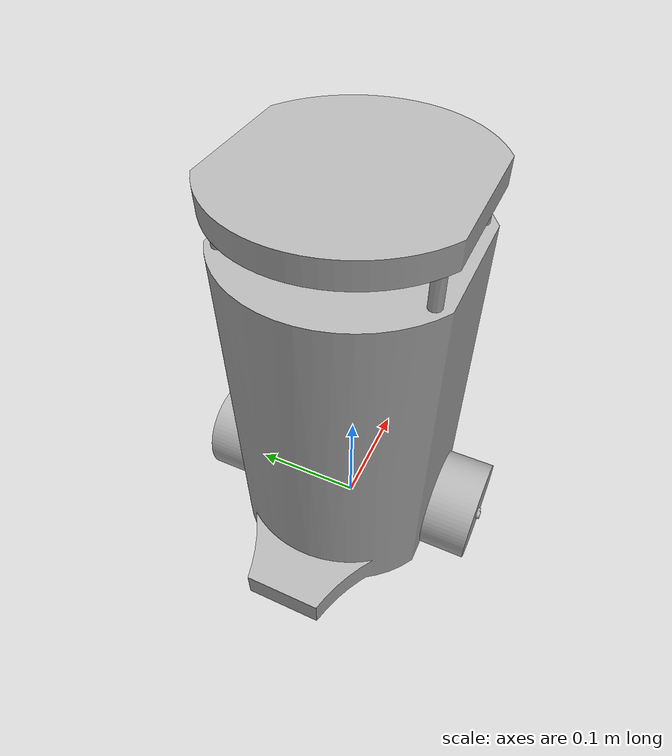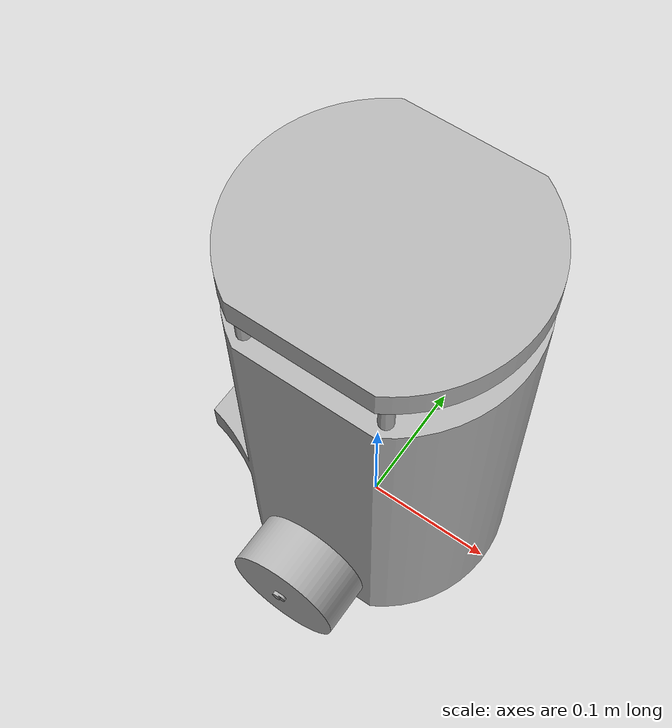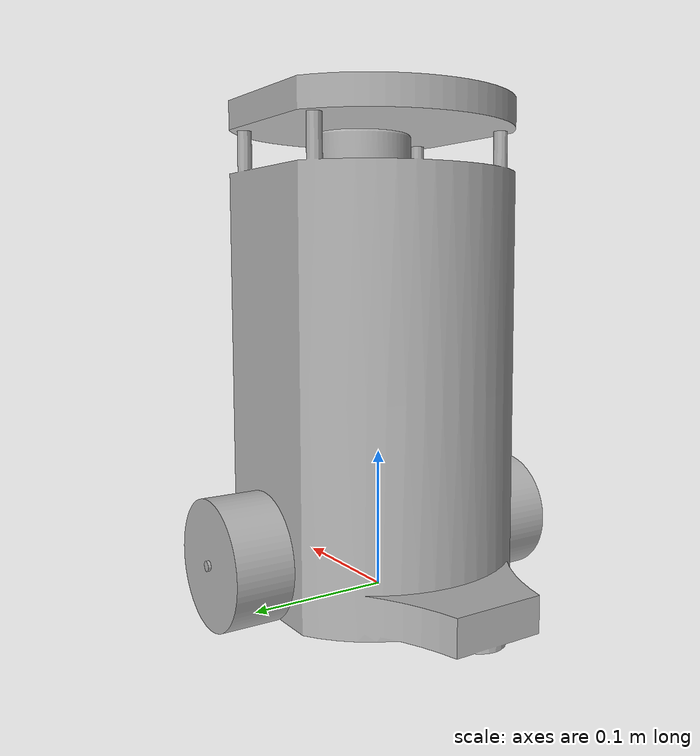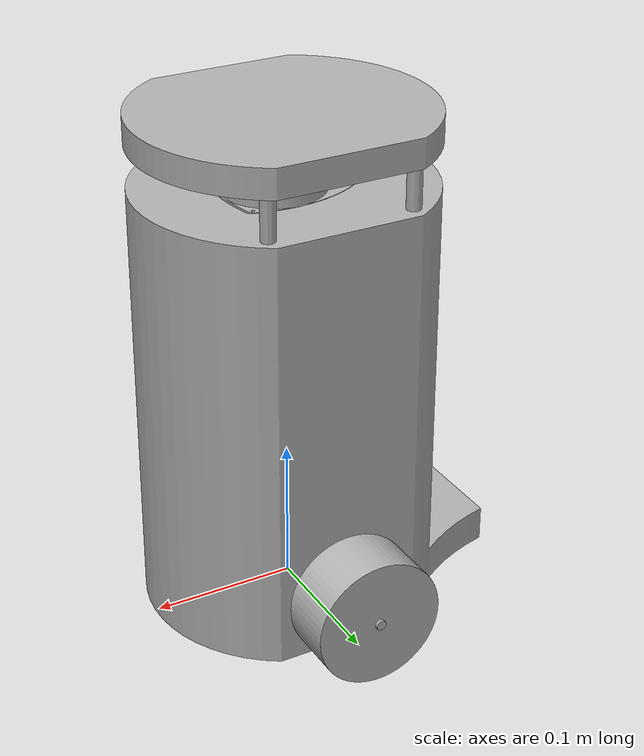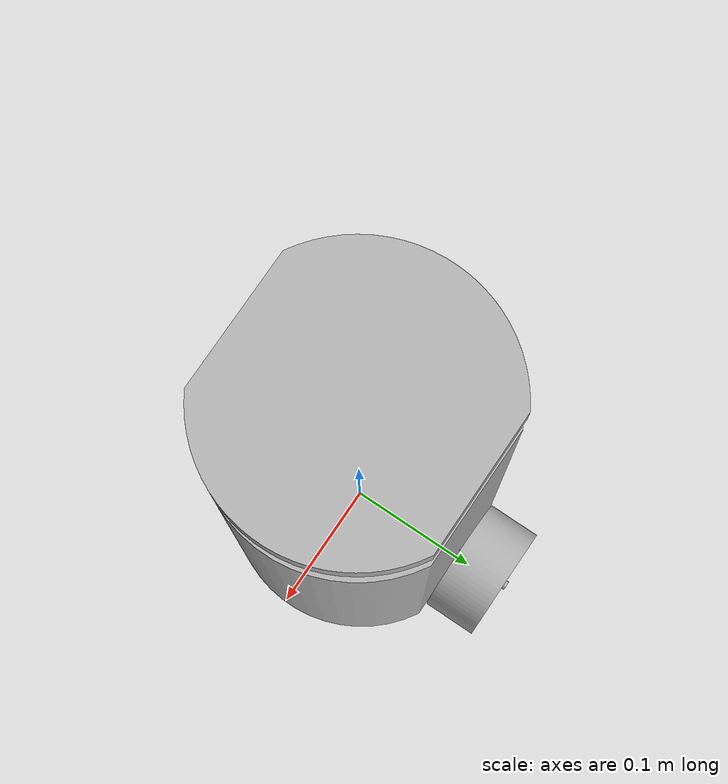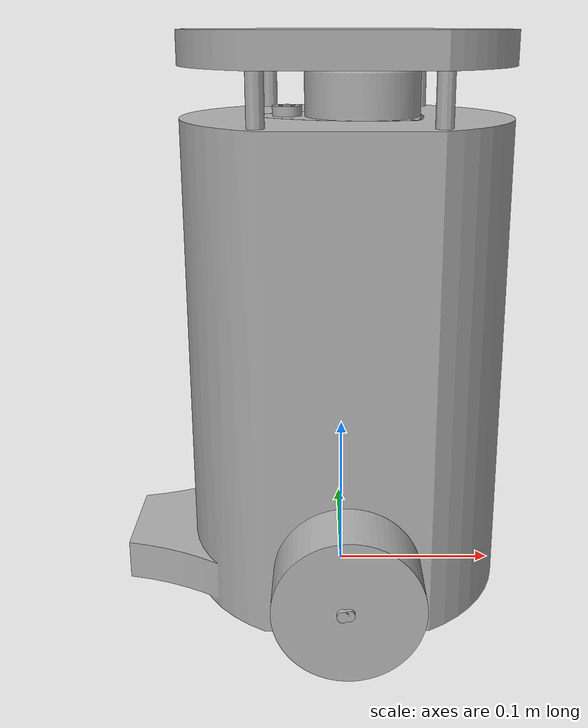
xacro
<?xml version="1.0" ?>
<robot name="my_amr" xmlns:xacro="http://www.ros.org/wiki/xacro">

<xacro:include filename="$(find my_amr_description)/urdf/materials.xacro" />
<xacro:include filename="$(find my_amr_description)/urdf/my_amr.trans" />
<xacro:include filename="$(find my_amr_description)/urdf/my_amr.gazebo" />
<link name="base_link">
  <inertial>
    <origin xyz="0.0011441654834987553 0.003063642546493052 0.14460839549939128" rpy="0 0 0"/>
    <mass value="69.15228989184162"/>
    <inertia ixx="0.660972" iyy="0.702314" izz="0.340561" ixy="9e-06" iyz="0.000547" ixz="-0.009543"/>
  </inertial>
  <visual>
    <origin xyz="0 0 0" rpy="0 0 0"/>
    <geometry>
      <mesh filename="package://my_amr_description/meshes/base_link.stl" scale="0.001 0.001 0.001"/>
    </geometry>
    <material name="silver"/>
  </visual>
  <collision>
    <origin xyz="0 0 0" rpy="0 0 0"/>
    <geometry>
      <mesh filename="package://my_amr_description/meshes/base_link.stl" scale="0.001 0.001 0.001"/>
    </geometry>
  </collision>
</link>

<link name="top_1">
  <inertial>
    <origin xyz="-0.10227028847511865 -0.00312933270363939 0.041653403465186756" rpy="0 0 0"/>
    <mass value="4.647860194698938"/>
    <inertia ixx="0.010075" iyy="0.012341" izz="0.022106" ixy="0.0" iyz="0.0" ixz="-0.0"/>
  </inertial>
  <visual>
    <origin xyz="-0.104541 -0.006259 -0.296693" rpy="0 0 0"/>
    <geometry>
      <mesh filename="package://my_amr_description/meshes/top_1.stl" scale="0.001 0.001 0.001"/>
    </geometry>
    <material name="silver"/>
  </visual>
  <collision>
    <origin xyz="-0.104541 -0.006259 -0.296693" rpy="0 0 0"/>
    <geometry>
      <mesh filename="package://my_amr_description/meshes/top_1.stl" scale="0.001 0.001 0.001"/>
    </geometry>
  </collision>
</link>

<link name="lidar_1">
  <inertial>
    <origin xyz="0.055310502750731315 -0.0030822384979997328 0.005259563732281147" rpy="0 0 0"/>
    <mass value="1.339299707757657"/>
    <inertia ixx="0.000619" iyy="0.000967" izz="0.001105" ixy="-1e-06" iyz="3e-06" ixz="-0.000159"/>
  </inertial>
  <visual>
    <origin xyz="0.0 -0.009421 -0.31" rpy="0 0 0"/>
    <geometry>
      <mesh filename="package://my_amr_description/meshes/lidar_1.stl" scale="0.001 0.001 0.001"/>
    </geometry>
    <material name="silver"/>
  </visual>
  <collision>
    <origin xyz="0.0 -0.009421 -0.31" rpy="0 0 0"/>
    <geometry>
      <mesh filename="package://my_amr_description/meshes/lidar_1.stl" scale="0.001 0.001 0.001"/>
    </geometry>
  </collision>
</link>

<link name="right_tyre_1">
  <inertial>
    <origin xyz="-2.884751206526544e-07 1.2691791521912688e-07 4.0346518798833886e-07" rpy="0 0 0"/>
    <mass value="1.8977026043458158"/>
    <inertia ixx="0.001177" iyy="0.001849" izz="0.001177" ixy="-0.0" iyz="-0.0" ixz="0.0"/>
  </inertial>
  <visual>
    <origin xyz="-0.002271 0.105473 -0.038346" rpy="0 0 0"/>
    <geometry>
      <mesh filename="package://my_amr_description/meshes/right_tyre_1.stl" scale="0.001 0.001 0.001"/>
    </geometry>
    <material name="silver"/>
  </visual>
  <collision>
    <origin xyz="-0.002271 0.105473 -0.038346" rpy="0 0 0"/>
    <geometry>
      <mesh filename="package://my_amr_description/meshes/right_tyre_1.stl" scale="0.001 0.001 0.001"/>
    </geometry>
  </collision>
</link>

<link name="left_tyre_1">
  <inertial>
    <origin xyz="-2.8847512004810325e-07 2.076748055329647e-07 4.034651876136386e-07" rpy="0 0 0"/>
    <mass value="1.897702604345816"/>
    <inertia ixx="0.001177" iyy="0.001849" izz="0.001177" ixy="0.0" iyz="0.0" ixz="0.0"/>
  </inertial>
  <visual>
    <origin xyz="-0.002271 -0.111732 -0.038346" rpy="0 0 0"/>
    <geometry>
      <mesh filename="package://my_amr_description/meshes/left_tyre_1.stl" scale="0.001 0.001 0.001"/>
    </geometry>
    <material name="silver"/>
  </visual>
  <collision>
    <origin xyz="-0.002271 -0.111732 -0.038346" rpy="0 0 0"/>
    <geometry>
      <mesh filename="package://my_amr_description/meshes/left_tyre_1.stl" scale="0.001 0.001 0.001"/>
    </geometry>
  </collision>
</link>

<link name="Component7_1">
  <inertial>
    <origin xyz="4.792175202356086e-07 -3.3270363962011745e-07 4.0346518761450595e-07" rpy="0 0 0"/>
    <mass value="0.07224176082733826"/>
    <inertia ixx="5e-06" iyy="5e-06" izz="5e-06" ixy="0.0" iyz="0.0" ixz="0.0"/>
  </inertial>
  <visual>
    <origin xyz="0.118194 -0.00313 -0.007646" rpy="0 0 0"/>
    <geometry>
      <mesh filename="package://my_amr_description/meshes/Component7_1.stl" scale="0.001 0.001 0.001"/>
    </geometry>
    <material name="silver"/>
  </visual>
  <collision>
    <origin xyz="0.118194 -0.00313 -0.007646" rpy="0 0 0"/>
    <geometry>
      <mesh filename="package://my_amr_description/meshes/Component7_1.stl" scale="0.001 0.001 0.001"/>
    </geometry>
  </collision>
</link>

<joint name="Rigid 4" type="fixed">
  <origin xyz="0.104541 0.006259 0.296693" rpy="0 0 0"/>
  <parent link="base_link"/>
  <child link="top_1"/>
</joint>

<joint name="Rigid 7" type="fixed">
  <origin xyz="-0.00 0.009421 0.31" rpy="0 0 0"/>
  <parent link="base_link"/>
  <child link="lidar_1"/>
</joint>

<joint name="right_joint" type="continuous">
  <origin xyz="0.002271 -0.105473 0.038346" rpy="0 0 0"/>
  <parent link="base_link"/>
  <child link="right_tyre_1"/>
  <axis xyz="-0.0 1.0 0.0"/>
</joint>

<joint name="left_joint" type="continuous">
  <origin xyz="0.002271 0.111732 0.038346" rpy="0 0 0"/>
  <parent link="base_link"/>
  <child link="left_tyre_1"/>
  <axis xyz="0.0 1.0 -0.0"/>
</joint>

<joint name="Ball 10" type="fixed">
  <origin xyz="-0.118194 0.00313 0.007646" rpy="0 0 0"/>
  <parent link="base_link"/>
  <child link="Component7_1"/>
</joint>

    <gazebo>
        <plugin
            filename="libgazebo_ros_diff_drive.so"
            name="DiffDrive">
            <left_joint>left_joint</left_joint>
            <right_joint>right_joint</right_joint>
            <wheel_separation>0.194</wheel_separation>
            <wheel_diameter>0.088</wheel_diameter>

            <max_wheel_torque>6.0</max_wheel_torque>
            <max_wheel_acceleration>1.0</max_wheel_acceleration>

            <!-- odometry  -->
            <odometry_source>1</odometry_source>
            <odometry_frame>odom</odometry_frame>
            <robot_base_frame>base_link</robot_base_frame>

            <!-- topic & re remappings -->
            <ros>
              <namespace>/</namespace>
              <remapping>/cmd_vel:=/cmd_vel</remapping>
              <remapping>/odom:=/odom</remapping>
            </ros>

            <publish_odom>true</publish_odom>
            <publish_odom_tf>true</publish_odom_tf>
            <publish_wheel_tf>true</publish_wheel_tf>

            <!-- Set to true to swap right and left wheels, defaults to true -->
            <legacyMode>false</legacyMode>
            <update_rate>100.0</update_rate>
        </plugin>
    </gazebo>

    <gazebo reference="lidar_1">
        <sensor name="laser" type="ray">
            <pose> 0 0 0 0 0 0 </pose>
            <visualize>0</visualize>
            <update_rate>30</update_rate>
            <ray>
                <scan>
                    <horizontal>
                        <samples>720</samples>
                        <min_angle>-3.14</min_angle>
                        <max_angle>3.14</max_angle>
                    </horizontal>
                </scan>
                <range>
                    <min>0.11</min>
                    <max>8</max>
                </range>
            </ray>
            <plugin name="laser_controller" filename="libgazebo_ros_ray_sensor.so">
                <ros>
                    <remapping>~/out:=scan</remapping>
                </ros>
                <output_type>sensor_msgs/LaserScan</output_type>
                <frame_name>lidar_1</frame_name>
            </plugin>
        </sensor>
    </gazebo>

</robot>

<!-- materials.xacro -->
<robot name="my_amr" xmlns:xacro="http://www.ros.org/wiki/xacro" >

<material name="silver">
  <color rgba="0.700 0.700 0.700 1.000"/>
</material>

</robot>

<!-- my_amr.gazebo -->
<robot name="my_amr" xmlns:xacro="http://www.ros.org/wiki/xacro" >

<xacro:property name="body_color" value="Gazebo/Silver" />

<gazebo reference="base_link">
  <material>${body_color}</material>
  <mu1>0.001</mu1>
  <mu2>0.001</mu2>
  <selfCollide>true</selfCollide>
  <gravity>true</gravity>
</gazebo>

<gazebo reference="top_1">
  <material>${body_color}</material>
  <mu1>0.2</mu1>
  <mu2>0.2</mu2>
  <selfCollide>true</selfCollide>
</gazebo>

<gazebo reference="lidar_1">
  <material>${body_color}</material>
  <mu1>0.2</mu1>
  <mu2>0.2</mu2>
  <selfCollide>true</selfCollide>
</gazebo>

<gazebo reference="right_tyre_1">
  <material>${body_color}</material>
  <mu1>0.4</mu1>
  <mu2>0.4</mu2>
  <selfCollide>true</selfCollide>
</gazebo>

<gazebo reference="left_tyre_1">
  <material>${body_color}</material>
  <mu1>0.4</mu1>
  <mu2>0.4</mu2>
  <selfCollide>true</selfCollide>
</gazebo>

<gazebo reference="Component7_1">
  <material>${body_color}</material>
  <mu1>0.001</mu1>
  <mu2>0.001</mu2>
  <selfCollide>true</selfCollide>
</gazebo>

</robot>
